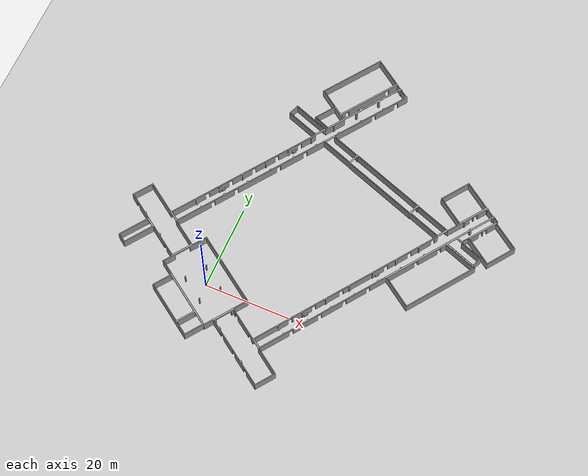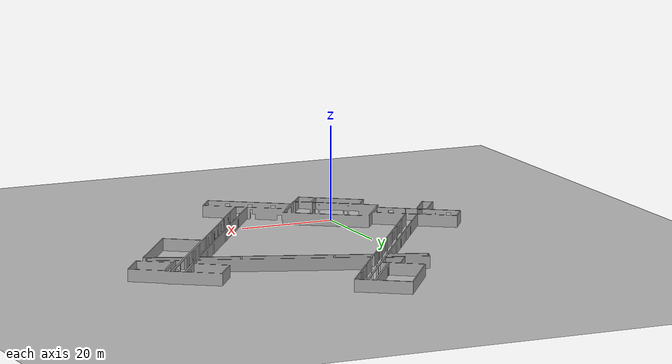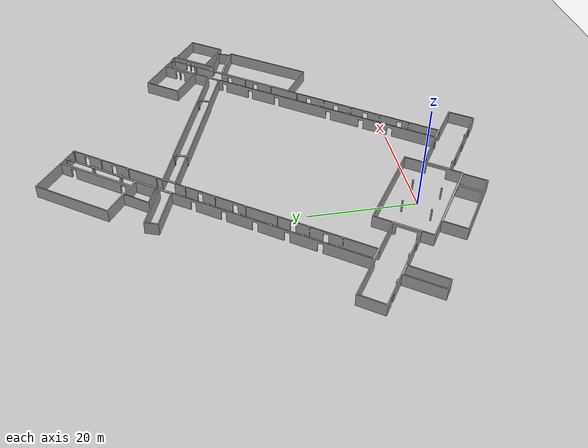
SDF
<?xml version="1.0" ?>
<sdf version="1.6">
  <world name="brsu_building_c_with_doorways">
    <light name='sun' type='directional'>
      <cast_shadows>1</cast_shadows>
      <pose>0 0 10 0 -0 0</pose>
      <diffuse>0.8 0.8 0.8 1</diffuse>
      <specular>0.2 0.2 0.2 1</specular>
      <attenuation>
        <range>1000</range>
        <constant>0.9</constant>
        <linear>0.01</linear>
        <quadratic>0.001</quadratic>
      </attenuation>
      <direction>-0.5 0.1 -0.9</direction>
    </light>

    <model name='ground_plane'>
      <static>1</static>
      <link name='link'>
        <collision name='collision'>
          <geometry>
            <plane>
              <normal>0 0 1</normal>
              <size>100 100</size>
            </plane>
          </geometry>
          <surface>
            <friction>
              <ode>
                <mu>100</mu>
                <mu2>50</mu2>
              </ode>
            </friction>
          </surface>
        </collision>
        <visual name='visual'>
          <cast_shadows>0</cast_shadows>
          <geometry>
            <plane>
              <normal>0 0 1</normal>
              <size>100 100</size>
            </plane>
          </geometry>
          <material>
            <script>
              <uri>file://media/materials/scripts/gazebo.material</uri>
              <name>Gazebo/Grey</name>
            </script>
          </material>
        </visual>
      </link>
    </model>

    <model name="brsu_building_c_with_doorways">
      <static>true</static>
      <pose>0 0 0 0 0 0</pose>
      <link name="link">
        <visual name="visual">
          <geometry>
            <mesh>
              <uri>file:///home/sofian/Downloads/amr_ws/src/soprano_slam_navigation/worlds/models/brsu_building_c_with_doorways/brsu_building_c_with_doorways.stl</uri>
            </mesh>
          </geometry>
          <material>
            <script>
              <uri>file://media/materials/scripts/gazebo.material</uri>
              <name>Gazebo/Grey</name>
            </script>
          </material>
        </visual>
        <collision name="collision">
          <geometry>
            <mesh>
              <uri>file:///home/sofian/Downloads/amr_ws/src/soprano_slam_navigation/worlds/models/brsu_building_c_with_doorways/brsu_building_c_with_doorways.stl</uri>
            </mesh>
          </geometry>
        </collision>
      </link>
    </model>

    <physics type='ode'>
      <max_step_size>0.001</max_step_size>
      <real_time_factor>1</real_time_factor>
      <real_time_update_rate>1000</real_time_update_rate>
    </physics>

    <scene>
      <ambient>0.4 0.4 0.4 1</ambient>
      <background>0.7 0.7 0.7 1</background>
      <shadows>1</shadows>
    </scene>
  </world>
</sdf>
